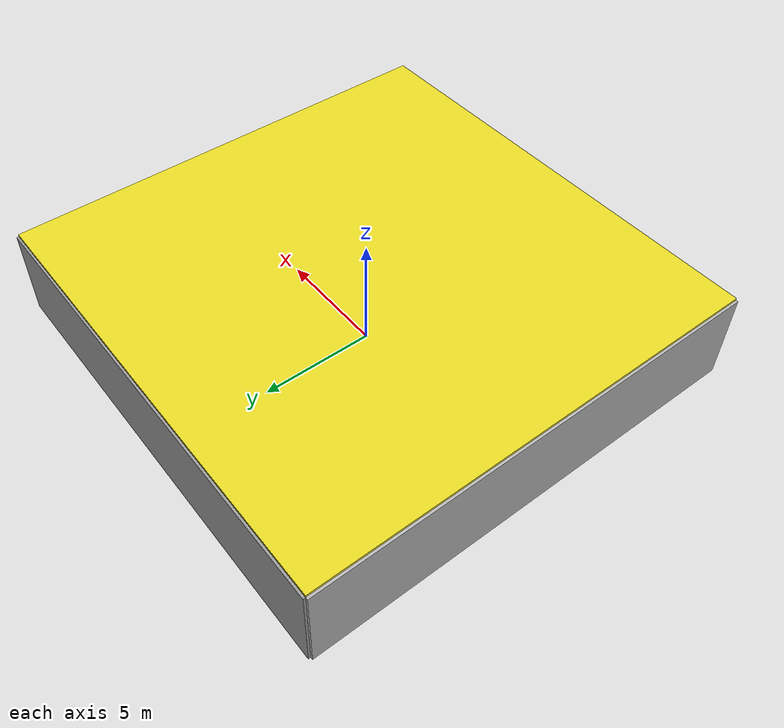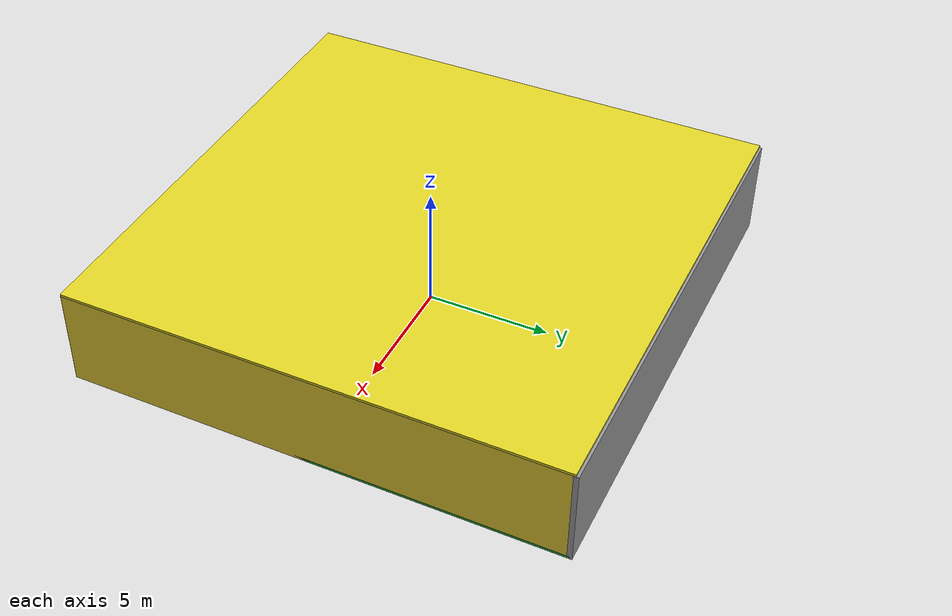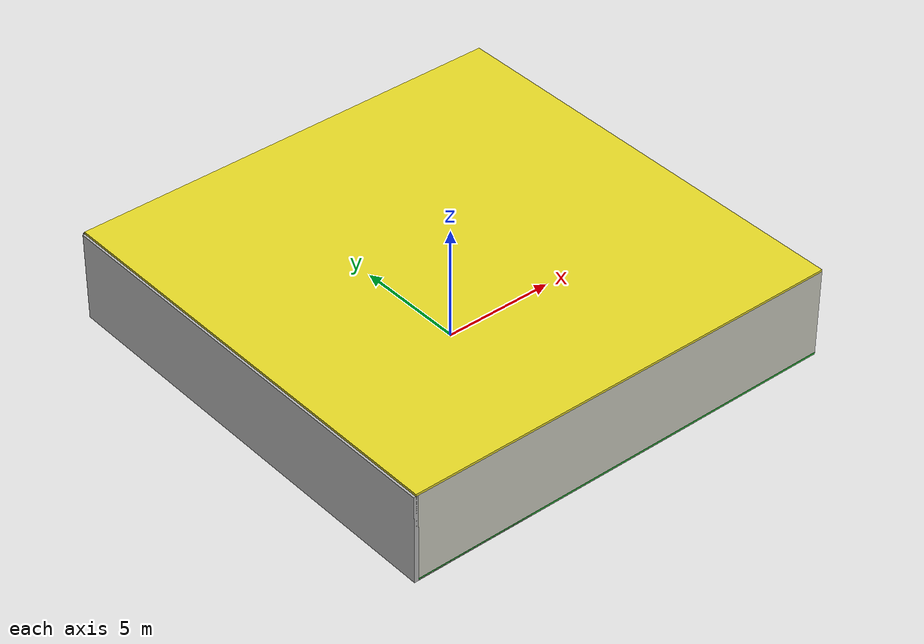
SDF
<sdf version="1.4">
 <world name="default">
  <physics type="ode">
   <max_step_size>0.001</max_step_size>
   <real_time_factor>1</real_time_factor>
   <real_time_update_rate>1000</real_time_update_rate>
   <gravity>0 0 -9.8</gravity>
  </physics>
  <scene><ambient>0.4 0.4 0.4 1</ambient><background>0.7 0.7 0.7 1</background><shadows>1</shadows></scene>
  <model name="Surrounding">
   <static>1</static>
   <link name="Ceiling">
    <collision name="Ceiling_Collision"><geometry><box><size>20 20 0.1</size></box></geometry></collision>
    <visual name="Ceiling_Visual">
     <geometry><box><size>20 20 0.1</size></box></geometry>
     <material>
      <script><uri>file://media/materials/scripts/gazebo.material</uri><name>Gazebo/YellowGlow</name></script>
     </material>
    </visual>
    <pose>0 0 4.05 0 0 0</pose>
   </link>
   <link name="Wall_South">
    <collision name="Wall_South_Collision">
     <geometry><box><size>20 0 4</size></box></geometry>
     <pose>0 0 2 0 -0 0</pose>
    </collision>
    <visual name="Wall_South_Visual">
     <pose>0 0 2 0 -0 0</pose>
     <geometry><box><size>20 0 4</size></box></geometry>
     <material>
      <script><uri>file://media/materials/scripts/gazebo.material</uri><name>Gazebo/PaintedWall</name></script>
     </material>
    </visual>
    <velocity_decay><linear>0</linear><angular>0</angular></velocity_decay>
    <pose>0 -10 0 0 -0 0</pose>
   </link>
   <link name="Wall_East">
    <collision name="Wall_21_Collision">
     <geometry><box><size>20 0 4</size></box></geometry>
     <pose>0 0 2 0 -0 0</pose>
    </collision>
    <visual name="Wall_21_Visual">
     <pose>0 0 2 0 -0 0</pose>
     <geometry><box><size>20 0 4</size></box></geometry>
     <material>
      <script><uri>file://media/materials/scripts/gazebo.material</uri><name>Gazebo/ZincYellow</name></script>
     </material>
    </visual>
    <velocity_decay><linear>0</linear><angular>0</angular></velocity_decay>
    <pose>10 0 0 0 -0 1.5708</pose>
   </link>
   <link name="Wall_North">
    <collision name="Wall_22_Collision">
     <geometry><box><size>20 0.2 4</size></box></geometry>
     <pose>0 0 2 0 -0 0</pose>
    </collision>
    <visual name="Wall_22_Visual">
     <pose>0 0 2 0 -0 0</pose>
     <geometry><box><size>20 0.2 4</size></box></geometry>
     <material>
      <script><uri>file://media/materials/scripts/gazebo.material</uri><name>Gazebo/Grey</name></script>
     </material>
    </visual>
    <velocity_decay><linear>0</linear><angular>0</angular></velocity_decay>
    <pose>0 10 0 0 -0 0</pose>
   </link>
   <link name="Wall_West">
    <collision name="Wall_23_Collision">
     <geometry><box><size>20 0.2 4</size></box></geometry>
     <pose>0 0 2 0 -0 0</pose>
    </collision>
    <visual name="Wall_23_Visual">
     <pose>0 0 2 0 -0 0</pose>
     <geometry><box><size>20 0.2 4</size></box></geometry>
     <material>
      <script><uri>file://media/materials/scripts/gazebo.material</uri><name>Gazebo/LightOff</name></script>
     </material>
    </visual>
    <velocity_decay><linear>0</linear><angular>0</angular></velocity_decay>
    <pose>-10 0 0 0 0 -1.5708</pose>
   </link>
   <link name="Ground_link">
    <collision name="collision">
     <pose>0 0 .05 0 -0 0</pose>
     <geometry><box><size>20 20 0.1</size></box></geometry>
    </collision>
    <visual name="visual">
     <pose>0 0 .05 0 -0 0</pose>
     <geometry><box><size>20 20 0.1</size></box></geometry>
     <material>
      <script><uri>file://media/materials/scripts/gazebo.material</uri><name>Gazebo/GreenGlow</name></script>
     </material>
    </visual>
   </link>
   <static>1</static>
  </model>
  <spherical_coordinates>
   <surface_model>EARTH_WGS84</surface_model>
   <latitude_deg>0</latitude_deg>
   <longitude_deg>0</longitude_deg>
   <elevation>0</elevation>
   <heading_deg>0</heading_deg>
  </spherical_coordinates>
  <light name="lightball_0" type="diffuse">
   <diffuse>0.8 0.8 0.8 1</diffuse>
   <specular>0.2 0.2 0.2 1</specular>
   <attenuation>
    <range>100</range>
    <constant>0.7</constant>
    <linear>0.01</linear>
    <quadratic>0.001</quadratic>
   </attenuation>
   <direction>-0.5 0.1 -0.9</direction>
   <pose>-8.100972308 9.85851182666 1.03692788626 0 0 0</pose>
  </light>
  <light name="lightball_1" type="diffuse">
   <diffuse>0.8 0.8 0.8 1</diffuse>
   <specular>0.2 0.2 0.2 1</specular>
   <attenuation>
    <range>100</range>
    <constant>0.7</constant>
    <linear>0.01</linear>
    <quadratic>0.001</quadratic>
   </attenuation>
   <direction>-0.5 0.1 -0.9</direction>
   <pose>-1.85800843598 -7.84229479502 3.31093457778 0 0 0</pose>
  </light>
  <light name="lightball_2" type="diffuse">
   <diffuse>0.8 0.8 0.8 1</diffuse>
   <specular>0.2 0.2 0.2 1</specular>
   <attenuation>
    <range>100</range>
    <constant>0.7</constant>
    <linear>0.01</linear>
    <quadratic>0.001</quadratic>
   </attenuation>
   <direction>-0.5 0.1 -0.9</direction>
   <pose>-3.89067803772 -0.621183981464 3.0110484206 0 0 0</pose>
  </light>
  <light name="lightball_3" type="diffuse">
   <diffuse>0.8 0.8 0.8 1</diffuse>
   <specular>0.2 0.2 0.2 1</specular>
   <attenuation>
    <range>100</range>
    <constant>0.7</constant>
    <linear>0.01</linear>
    <quadratic>0.001</quadratic>
   </attenuation>
   <direction>-0.5 0.1 -0.9</direction>
   <pose>2.46911557406 5.50491016726 1.95105667653 0 0 0</pose>
  </light>
  <include><uri>model://cabinet</uri><pose>-4.31934024281 -4.04763389017 0 0 0 1.35096590322</pose></include>
  <include><uri>model://cabinet</uri><pose>-3.59054412113 3.53305414832 0 0 0 0.593845963942</pose></include>
  <include><uri>model://cabinet</uri><pose>-0.989884401228 2.43345880391 0 0 0 0.985104661494</pose></include>
  <include>
   <uri>model://robocup_3Dsim_goal</uri>
   <pose>0.501471968681 2.25931996519 0 0 0 1.67780436156</pose>
  </include>
  <include>
   <uri>model://construction_cone</uri>
   <pose>3.76110149541 6.51239403098 0 0 0 1.14187281836</pose>
  </include>
  <include><uri>model://cabinet</uri><pose>6.66041920274 5.06227198972 0 0 0 0.977016255085</pose></include>
 </world>
</sdf>

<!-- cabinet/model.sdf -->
<sdf version="1.5">
  <model name="cabinet">
    <static>true</static>
    <link name="cabinet_bottom_plate">
      <inertial>
        <pose>0 0 -1 0 0 0</pose>
        <inertia>
          <ixx>2.050000</ixx>
          <ixy>0</ixy>
          <ixz>0</ixz>
          <iyy>2.050000</iyy>
          <iyz>0</iyz>
          <izz>2.050000</izz>
        </inertia>
        <mass>25.000000</mass>
      </inertial>
      <collision name="cabinet_bottom_plate_geom">
        <pose>0 0 0.010000 0 0 0</pose>
        <geometry>
          <box>
            <size>0.450000 0.450000 0.020000</size>
          </box>
        </geometry>
      </collision>
      <visual name="cabinet_bottom_plate_geom_visual">
        <pose>0 0 0.010000 0 0 0</pose>
        <geometry>
          <box>
            <size>0.450000 0.450000 0.020000</size>
          </box>
        </geometry>
        <material>
          <script>
            <uri>model://media/materials/scripts/gazebo.material</uri>
            <name>Gazebo/Wood</name>
          </script>
        </material>
      </visual>
      <collision name="cabinet_bottom_plate_geom_cabinet_back_plate">
        <pose>0.235000 0 0.510000 0 0 0</pose>
        <geometry>
          <box>
            <size>0.020000 0.450000 1.020000</size>
          </box>
        </geometry>
      </collision>
      <visual name="cabinet_bottom_plate_geom_cabinet_back_plate_visual">
        <pose>0.235000 0 0.510000 0 0 0</pose>
        <geometry>
          <box>
            <size>0.020000 0.450000 1.020000</size>
          </box>
        </geometry>
        <material>
          <script>
            <uri>model://media/materials/scripts/gazebo.material</uri>
            <name>Gazebo/Wood</name>
          </script>
        </material>
      </visual>
      <collision name="cabinet_bottom_plate_geom_cabinet_left_plate">
        <pose>0 0.235000 0.510000 0 0 0</pose>
        <geometry>
          <box>
            <size>0.450000 0.020000 1.020000</size>
          </box>
        </geometry>
      </collision>
      <visual name="cabinet_bottom_plate_geom_cabinet_left_plate_visual">
        <pose>0 0.235000 0.510000 0 0 0</pose>
        <geometry>
          <box>
            <size>0.450000 0.020000 1.020000</size>
          </box>
        </geometry>
        <material>
          <script>
            <uri>model://media/materials/scripts/gazebo.material</uri>
            <name>Gazebo/Wood</name>
          </script>
        </material>
      </visual>
      <collision name="cabinet_bottom_plate_geom_cabinet_middle_plate">
        <pose>0 0 0.510000 0 0 0</pose>
        <geometry>
          <box>
            <size>0.450000 0.450000 0.020000</size>
          </box>
        </geometry>
      </collision>
      <visual name="cabinet_bottom_plate_geom_cabinet_middle_plate_visual">
        <pose>0 0 0.510000 0 0 0</pose>
        <geometry>
          <box>
            <size>0.450000 0.450000 0.020000</size>
          </box>
        </geometry>
        <material>
          <script>
            <uri>model://media/materials/scripts/gazebo.material</uri>
            <name>Gazebo/Wood</name>
          </script>
        </material>
      </visual>
      <collision name="cabinet_bottom_plate_geom_cabinet_right_plate">
        <pose>0 -0.235000 0.510000 0 0 0</pose>
        <geometry>
          <box>
            <size>0.450000 0.020000 1.020000</size>
          </box>
        </geometry>
      </collision>
      <visual name="cabinet_bottom_plate_geom_cabinet_right_plate_visual">
        <pose>0 -0.235000 0.510000 0 0 0</pose>
        <geometry>
          <box>
            <size>0.450000 0.020000 1.020000</size>
          </box>
        </geometry>
        <material>
          <script>
            <uri>model://media/materials/scripts/gazebo.material</uri>
            <name>Gazebo/Wood</name>
          </script>
        </material>
      </visual>
      <collision name="cabinet_bottom_plate_geom_cabinet_top_plate">
        <pose>0 0 1.010000 0 0 0</pose>
        <geometry>
          <box>
            <size>0.450000 0.450000 0.020000</size>
          </box>
        </geometry>
      </collision>
      <visual name="cabinet_bottom_plate_geom_cabinet_top_plate_visual">
        <pose>0 0 1.010000 0 0 0</pose>
        <geometry>
          <box>
            <size>0.450000 0.450000 0.020000</size>
          </box>
        </geometry>
        <material>
          <script>
            <uri>model://media/materials/scripts/gazebo.material</uri>
            <name>Gazebo/Wood</name>
          </script>
        </material>
      </visual>
    </link>
  </model>
</sdf>

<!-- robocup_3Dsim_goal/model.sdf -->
<sdf version="1.5">
  <model name="robocup_3d_goal">
    <static>true</static>
    <link name="left_post">
      <pose>0 1.05 0.45 0 0 0</pose>
      <collision name="collision">
        <geometry>
          <cylinder>
            <radius>0.05</radius>
            <length>0.9</length>
          </cylinder>
        </geometry>
      </collision>
      <visual name="visual">
        <geometry>
          <cylinder>
            <radius>0.05</radius>
            <length>0.9</length>
          </cylinder>
        </geometry>
        <material>
          <script>
            <uri>file://media/materials/scripts/gazebo.material</uri>
            <name>Gazebo/ZincYellow</name>
          </script>
        </material>
      </visual>
    </link>
    <link name="left_support_horiz_lower">
      <pose>0.30 1.05 0.01 0 0 0</pose>
      <collision name="collision">
        <geometry>
          <box>
            <size>0.50 0.02 0.02</size>
          </box>
        </geometry>
      </collision>
      <visual name="visual">
        <geometry>
          <box>
            <size>0.50 0.02 0.02</size>
          </box>
        </geometry>
        <material>
          <script>
            <uri>file://media/materials/scripts/gazebo.material</uri>
            <name>Gazebo/White</name>
          </script>
        </material>
      </visual>
    </link>
    <link name="left_support_horiz_upper">
      <pose>0.30 1.05 0.79 0 0 0</pose>
      <collision name="collision">
        <geometry>
          <box>
            <size>0.50 0.02 0.02</size>
          </box>
        </geometry>
      </collision>
      <visual name="visual">
        <geometry>
          <box>
            <size>0.50 0.02 0.02</size>
          </box>
        </geometry>
        <material>
          <script>
            <uri>file://media/materials/scripts/gazebo.material</uri>
            <name>Gazebo/White</name>
          </script>
        </material>
      </visual>
    </link>
    <link name="left_support_vertical">
      <pose>0.56 1.05 0.4 0 1.5708 0</pose>
      <collision name="collision">
        <geometry>
          <box>
            <size>0.80 0.02 0.02</size>
          </box>
        </geometry>
      </collision>
      <visual name="visual">
        <geometry>
          <box>
            <size>0.80 0.02 0.02</size>
          </box>
        </geometry>
        <material>
          <script>
            <uri>file://media/materials/scripts/gazebo.material</uri>
            <name>Gazebo/White</name>
          </script>
        </material>
      </visual>
    </link>
    <link name="right_support_horiz_lower">
      <pose>0.30 -1.05 0.01 0 0 0</pose>
      <collision name="collision">
        <geometry>
          <box>
            <size>0.50 0.02 0.02</size>
          </box>
        </geometry>
      </collision>
      <visual name="visual">
        <geometry>
          <box>
            <size>0.50 0.02 0.02</size>
          </box>
        </geometry>
        <material>
          <script>
            <uri>file://media/materials/scripts/gazebo.material</uri>
            <name>Gazebo/White</name>
          </script>
        </material>
      </visual>
    </link>
    <link name="right_support_horiz_upper">
      <pose>0.30 -1.05 0.79 0 0 0</pose>
      <collision name="collision">
        <geometry>
          <box>
            <size>0.50 0.02 0.02</size>
          </box>
        </geometry>
      </collision>
      <visual name="visual">
        <geometry>
          <box>
            <size>0.50 0.02 0.02</size>
          </box>
        </geometry>
        <material>
          <script>
            <uri>file://media/materials/scripts/gazebo.material</uri>
            <name>Gazebo/White</name>
          </script>
        </material>
      </visual>
    </link>
    <link name="right_support_vertical">
      <pose>0.56 -1.05 0.4 0 1.5708 0</pose>
      <collision name="collision">
        <geometry>
          <box>
            <size>0.80 0.02 0.02</size>
          </box>
        </geometry>
      </collision>
      <visual name="visual">
        <geometry>
          <box>
            <size>0.80 0.02 0.02</size>
          </box>
        </geometry>
        <material>
          <script>
            <uri>file://media/materials/scripts/gazebo.material</uri>
            <name>Gazebo/White</name>
          </script>
        </material>
      </visual>
    </link>
    <link name="center_support_horiz_lower">
      <pose>0.56 0 0.01 0 1.5708 0</pose>
      <collision name="collision">
        <geometry>
          <box>
            <size>0.02 2.08 0.02</size>
          </box>
        </geometry>
      </collision>
      <visual name="visual">
        <geometry>
          <box>
            <size>0.02 2.08 0.02</size>
          </box>
        </geometry>
        <material>
          <script>
            <uri>file://media/materials/scripts/gazebo.material</uri>
            <name>Gazebo/White</name>
          </script>
        </material>
      </visual>
    </link>
    <link name="center_support_horiz_upper">
      <pose>0.56 0 0.79 0 1.5708 0</pose>
      <collision name="collision">
        <geometry>
          <box>
            <size>0.02 2.08 0.02</size>
          </box>
        </geometry>
      </collision>
      <visual name="visual">
        <geometry>
          <box>
            <size>0.02 2.08 0.02</size>
          </box>
        </geometry>
        <material>
          <script>
            <uri>file://media/materials/scripts/gazebo.material</uri>
            <name>Gazebo/White</name>
          </script>
        </material>
      </visual>
    </link>
    <link name="right_post">
      <pose>0 -1.05 0.45 0 0 0</pose>
      <collision name="collision">
        <geometry>
          <cylinder>
            <radius>0.05</radius>
            <length>0.9</length>
          </cylinder>
        </geometry>
      </collision>
      <visual name="visual">
        <geometry>
          <cylinder>
            <radius>0.05</radius>
            <length>0.9</length>
          </cylinder>
        </geometry>
        <material>
          <script>
            <uri>file://media/materials/scripts/gazebo.material</uri>
            <name>Gazebo/ZincYellow</name>
          </script>
        </material>
      </visual>
    </link>
    <link name="crossbar">
      <pose>0 0 0.85 1.57 1.57 0</pose>
      <collision name="collision">
        <geometry>
          <cylinder>
            <radius>0.05</radius>
            <length>2.0</length>
          </cylinder>
        </geometry>
      </collision>
      <visual name="visual">
        <geometry>
          <cylinder>
            <radius>0.05</radius>
            <length>2.0</length>
          </cylinder>
        </geometry>
        <material>
          <script>
            <uri>file://media/materials/scripts/gazebo.material</uri>
            <name>Gazebo/ZincYellow</name>
          </script>
        </material>
      </visual>
    </link>
    <link name="center_net">
      <pose>0.56 0 0.40 0 0 0</pose>
      <collision name="collision">
        <geometry>
          <box>
            <size>0.01 2.1 0.80</size>
          </box>
        </geometry>
      </collision>
      <visual name="visual">
        <geometry>
          <box>
            <size>0.01 2.1 0.80</size>
          </box>
        </geometry>
        <material>
          <script>
            <uri>model://../model_source/models/robocup09_spl_field/materials/scripts/</uri>
            <uri>model://../model_source/models/robocup09_spl_field/materials/textures/</uri>
            <name>RoboCup/Net</name>
          </script>
        </material>
      </visual>
    </link>
    <link name="left_net">
      <pose>0.30 1.05 0.40 0 0 0</pose>
      <collision name="collision">
        <geometry>
          <box>
            <size>0.50 0.01 0.76</size>
          </box>
        </geometry>
      </collision>
      <visual name="visual">
        <geometry>
          <box>
            <size>0.50 0.01 0.76</size>
          </box>
        </geometry>
        <material>
          <script>
            <uri>model://../model_source/models/robocup09_spl_field/materials/scripts/</uri>
            <uri>model://../model_source/models/robocup09_spl_field/materials/textures/</uri>
            <name>RoboCup/Net</name>
          </script>
        </material>
      </visual>
    </link>
    <link name="right_net">
      <pose>0.30 -1.05 0.40 0 0 0</pose>
      <collision name="collision">
        <geometry>
          <box>
            <size>0.50 0.01 0.76</size>
          </box>
        </geometry>
      </collision>
      <visual name="visual">
        <geometry>
          <box>
            <size>0.50 0.01 0.76</size>
          </box>
        </geometry>
        <material>
          <script>
            <uri>model://../model_source/models/robocup09_spl_field/materials/scripts/</uri>
            <uri>model://../model_source/models/robocup09_spl_field/materials/textures/</uri>
            <name>RoboCup/Net</name>
          </script>
        </material>
      </visual>
    </link>
  </model>
</sdf>

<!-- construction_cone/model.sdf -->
<sdf version="1.5">
  <model name="Construction Cone">
    <link name="link">
      <collision name="collision">
        <geometry>
          <mesh>
            <scale>10 10 10</scale>
            <uri>file://isr-testbed/construction_cone/meshes/construction_cone.dae</uri>
          </mesh>
        </geometry>
      </collision>
      <visual name="visual">
        <geometry>
          <mesh>
            <scale>10 10 10</scale>
            <uri>file://isr-testbed/construction_cone/meshes/construction_cone.dae</uri>
          </mesh>
        </geometry>
      </visual>
    </link>
  </model>
</sdf>
